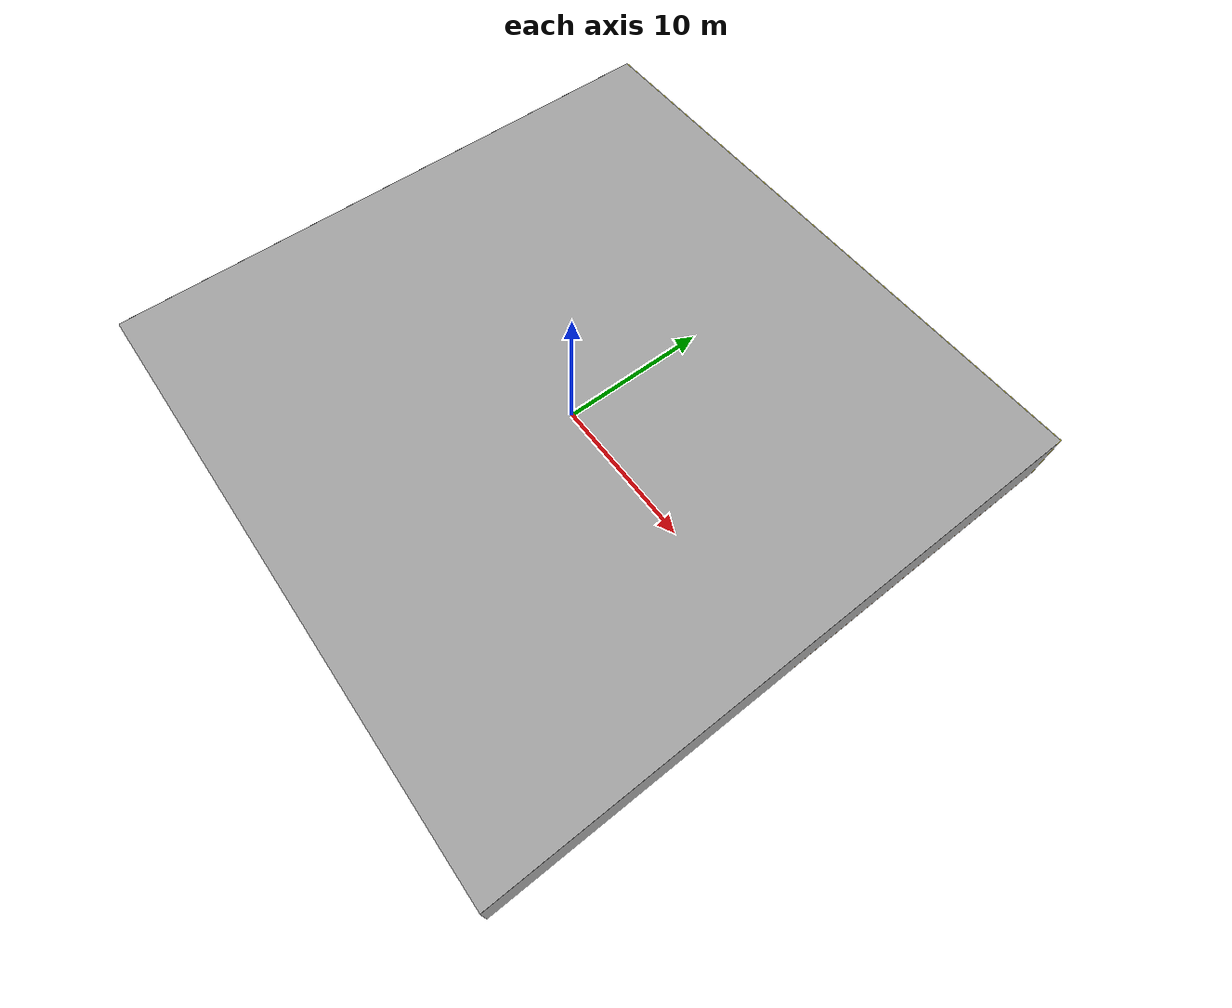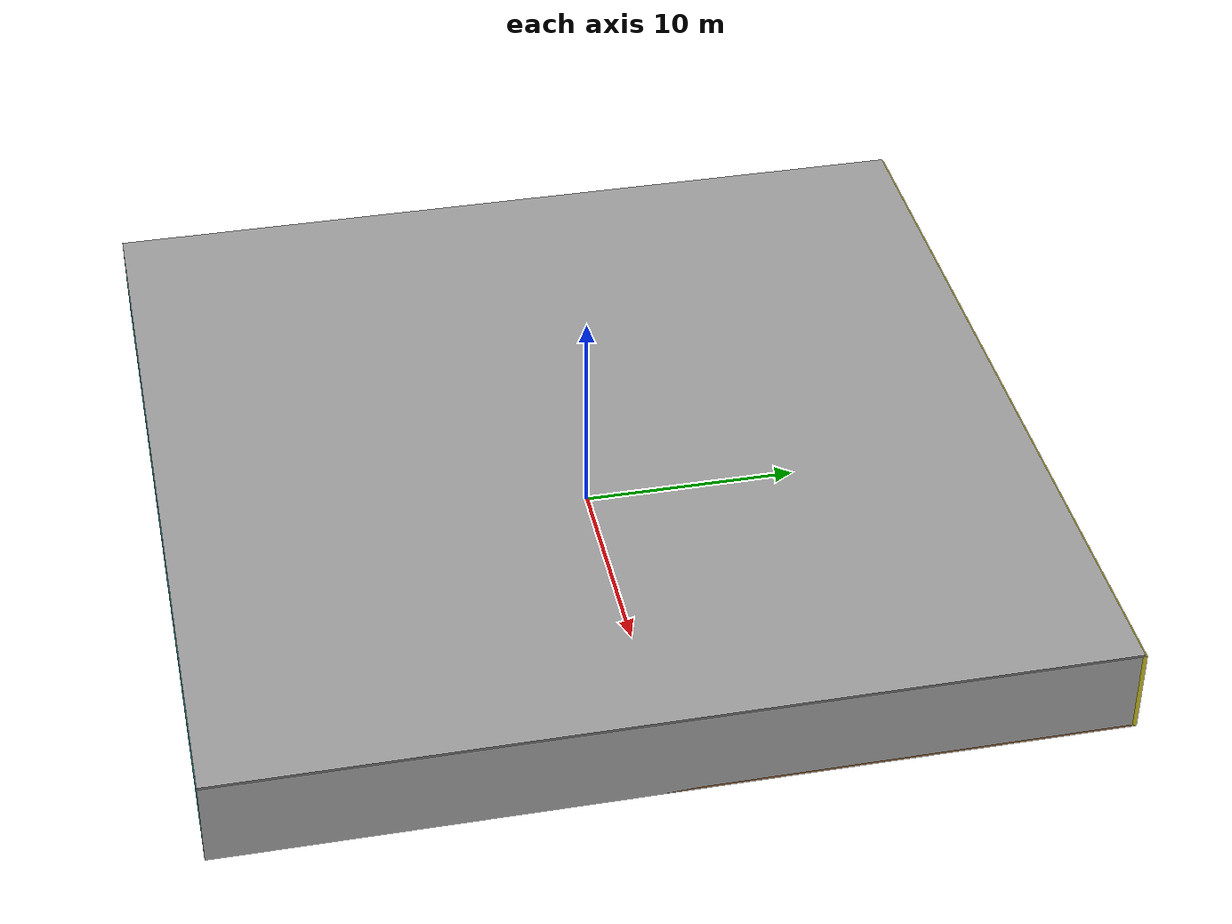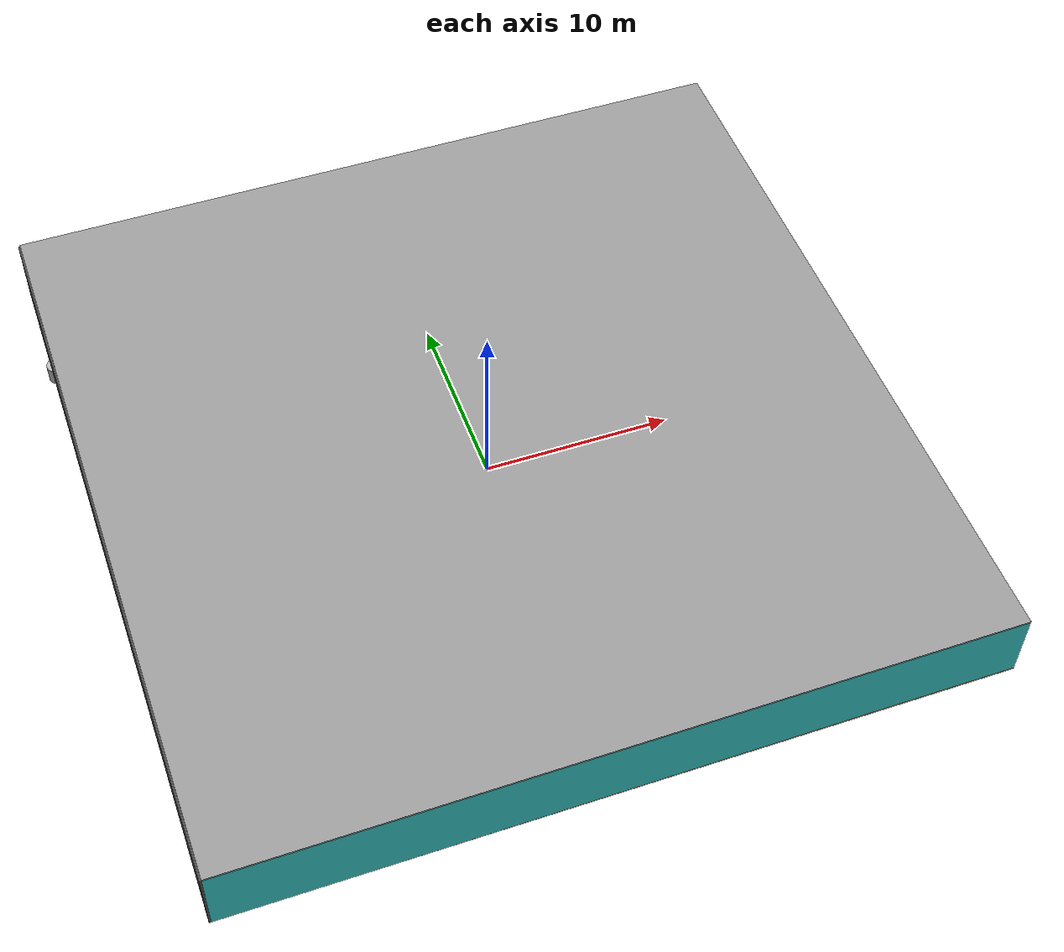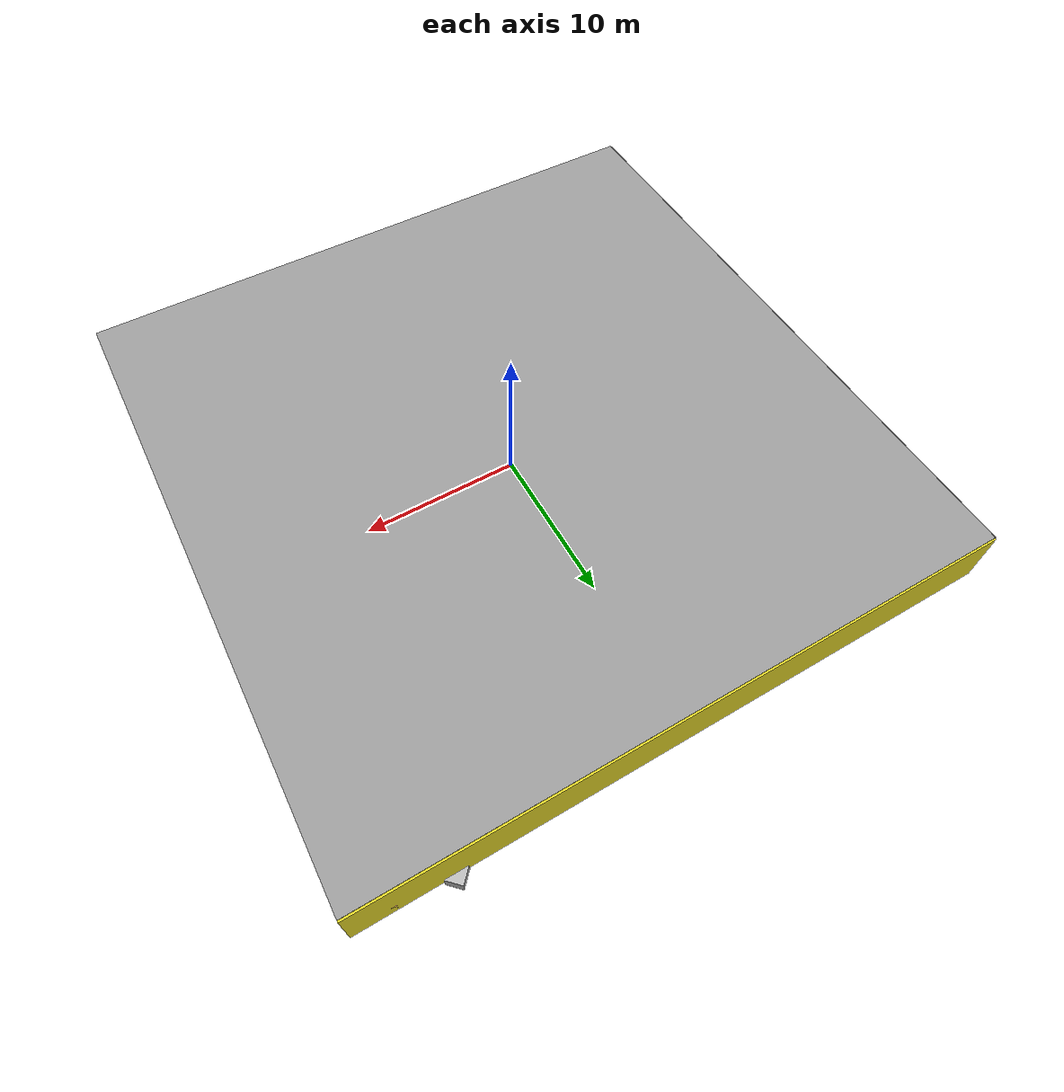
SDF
<sdf version="1.4">
 <world name="default">
  <physics type="ode">
   <max_step_size>0.001</max_step_size>
   <real_time_factor>1</real_time_factor>
   <real_time_update_rate>1000</real_time_update_rate>
   <gravity>0 0 -9.8</gravity>
  </physics>
  <scene><ambient>0.4 0.4 0.4 1</ambient><background>0.7 0.7 0.7 1</background><shadows>1</shadows></scene>
  <model name="Surrounding">
   <static>1</static>
   <link name="Ceiling">
    <collision name="Ceiling_Collision"><geometry><box><size>40 40 0.1</size></box></geometry></collision>
    <visual name="Ceiling_Visual">
     <geometry><box><size>40 40 0.1</size></box></geometry>
     <material>
      <script><uri>file://media/materials/scripts/gazebo.material</uri><name>Gazebo/Grey</name></script>
     </material>
    </visual>
    <pose>0 0 4.05 0 0 0</pose>
   </link>
   <link name="Wall_South">
    <collision name="Wall_South_Collision">
     <geometry><box><size>40 0 4</size></box></geometry>
     <pose>0 0 2 0 -0 0</pose>
    </collision>
    <visual name="Wall_South_Visual">
     <pose>0 0 2 0 -0 0</pose>
     <geometry><box><size>40 0 4</size></box></geometry>
     <material>
      <script><uri>file://media/materials/scripts/gazebo.material</uri><name>Gazebo/Turquoise</name></script>
     </material>
    </visual>
    <velocity_decay><linear>0</linear><angular>0</angular></velocity_decay>
    <pose>0 -20 0 0 -0 0</pose>
   </link>
   <link name="Wall_East">
    <collision name="Wall_21_Collision">
     <geometry><box><size>40 0 4</size></box></geometry>
     <pose>0 0 2 0 -0 0</pose>
    </collision>
    <visual name="Wall_21_Visual">
     <pose>0 0 2 0 -0 0</pose>
     <geometry><box><size>40 0 4</size></box></geometry>
     <material>
      <script><uri>file://media/materials/scripts/gazebo.material</uri><name>Gazebo/CloudySky</name></script>
     </material>
    </visual>
    <velocity_decay><linear>0</linear><angular>0</angular></velocity_decay>
    <pose>20 0 0 0 -0 1.5708</pose>
   </link>
   <link name="Wall_North">
    <collision name="Wall_22_Collision">
     <geometry><box><size>40 0.2 4</size></box></geometry>
     <pose>0 0 2 0 -0 0</pose>
    </collision>
    <visual name="Wall_22_Visual">
     <pose>0 0 2 0 -0 0</pose>
     <geometry><box><size>40 0.2 4</size></box></geometry>
     <material>
      <script><uri>file://media/materials/scripts/gazebo.material</uri><name>Gazebo/YellowGlow</name></script>
     </material>
    </visual>
    <velocity_decay><linear>0</linear><angular>0</angular></velocity_decay>
    <pose>0 20 0 0 -0 0</pose>
   </link>
   <link name="Wall_West">
    <collision name="Wall_23_Collision">
     <geometry><box><size>40 0.2 4</size></box></geometry>
     <pose>0 0 2 0 -0 0</pose>
    </collision>
    <visual name="Wall_23_Visual">
     <pose>0 0 2 0 -0 0</pose>
     <geometry><box><size>40 0.2 4</size></box></geometry>
     <material>
      <script><uri>file://media/materials/scripts/gazebo.material</uri><name>Gazebo/DarkGrey</name></script>
     </material>
    </visual>
    <velocity_decay><linear>0</linear><angular>0</angular></velocity_decay>
    <pose>-20 0 0 0 0 -1.5708</pose>
   </link>
   <link name="Ground_link">
    <collision name="collision">
     <pose>0 0 .05 0 -0 0</pose>
     <geometry><box><size>40 40 0.1</size></box></geometry>
    </collision>
    <visual name="visual">
     <pose>0 0 .05 0 -0 0</pose>
     <geometry><box><size>40 40 0.1</size></box></geometry>
     <material>
      <script><uri>file://media/materials/scripts/gazebo.material</uri><name>Gazebo/WoodFloor</name></script>
     </material>
    </visual>
   </link>
   <static>1</static>
  </model>
  <spherical_coordinates>
   <surface_model>EARTH_WGS84</surface_model>
   <latitude_deg>0</latitude_deg>
   <longitude_deg>0</longitude_deg>
   <elevation>0</elevation>
   <heading_deg>0</heading_deg>
  </spherical_coordinates>
  <light name="lightball_0" type="diffuse">
   <diffuse>0.8 0.8 0.8 1</diffuse>
   <specular>0.2 0.2 0.2 1</specular>
   <attenuation>
    <range>100</range>
    <constant>0.7</constant>
    <linear>0.01</linear>
    <quadratic>0.001</quadratic>
   </attenuation>
   <direction>-0.5 0.1 -0.9</direction>
   <pose>-2.07956091144 4.975582977 1.05396303672 0 0 0</pose>
  </light>
  <light name="lightball_1" type="diffuse">
   <diffuse>0.8 0.8 0.8 1</diffuse>
   <specular>0.2 0.2 0.2 1</specular>
   <attenuation>
    <range>100</range>
    <constant>0.7</constant>
    <linear>0.01</linear>
    <quadratic>0.001</quadratic>
   </attenuation>
   <direction>-0.5 0.1 -0.9</direction>
   <pose>-14.4867839166 -19.0525425243 3.67575148021 0 0 0</pose>
  </light>
  <light name="lightball_2" type="diffuse">
   <diffuse>0.8 0.8 0.8 1</diffuse>
   <specular>0.2 0.2 0.2 1</specular>
   <attenuation>
    <range>100</range>
    <constant>0.7</constant>
    <linear>0.01</linear>
    <quadratic>0.001</quadratic>
   </attenuation>
   <direction>-0.5 0.1 -0.9</direction>
   <pose>2.02870989799 -12.1729128392 2.53600060631 0 0 0</pose>
  </light>
  <light name="lightball_3" type="diffuse">
   <diffuse>0.8 0.8 0.8 1</diffuse>
   <specular>0.2 0.2 0.2 1</specular>
   <attenuation>
    <range>100</range>
    <constant>0.7</constant>
    <linear>0.01</linear>
    <quadratic>0.001</quadratic>
   </attenuation>
   <direction>-0.5 0.1 -0.9</direction>
   <pose>-4.0310227729 2.47132749829 2.3979667245 0 0 0</pose>
  </light>
  <light name="lightball_4" type="diffuse">
   <diffuse>0.8 0.8 0.8 1</diffuse>
   <specular>0.2 0.2 0.2 1</specular>
   <attenuation>
    <range>100</range>
    <constant>0.7</constant>
    <linear>0.01</linear>
    <quadratic>0.001</quadratic>
   </attenuation>
   <direction>-0.5 0.1 -0.9</direction>
   <pose>-9.00909840348 8.14205620594 2.99951083794 0 0 0</pose>
  </light>
  <light name="lightball_5" type="diffuse">
   <diffuse>0.8 0.8 0.8 1</diffuse>
   <specular>0.2 0.2 0.2 1</specular>
   <attenuation>
    <range>100</range>
    <constant>0.7</constant>
    <linear>0.01</linear>
    <quadratic>0.001</quadratic>
   </attenuation>
   <direction>-0.5 0.1 -0.9</direction>
   <pose>-18.9105956406 -17.6821626256 1.68796800262 0 0 0</pose>
  </light>
  <light name="lightball_6" type="diffuse">
   <diffuse>0.8 0.8 0.8 1</diffuse>
   <specular>0.2 0.2 0.2 1</specular>
   <attenuation>
    <range>100</range>
    <constant>0.7</constant>
    <linear>0.01</linear>
    <quadratic>0.001</quadratic>
   </attenuation>
   <direction>-0.5 0.1 -0.9</direction>
   <pose>-10.8703841117 -0.204241114403 0.534644914609 0 0 0</pose>
  </light>
  <light name="lightball_7" type="diffuse">
   <diffuse>0.8 0.8 0.8 1</diffuse>
   <specular>0.2 0.2 0.2 1</specular>
   <attenuation>
    <range>100</range>
    <constant>0.7</constant>
    <linear>0.01</linear>
    <quadratic>0.001</quadratic>
   </attenuation>
   <direction>-0.5 0.1 -0.9</direction>
   <pose>12.090448857 -8.66887239002 1.52405513387 0 0 0</pose>
  </light>
  <light name="lightball_8" type="diffuse">
   <diffuse>0.8 0.8 0.8 1</diffuse>
   <specular>0.2 0.2 0.2 1</specular>
   <attenuation>
    <range>100</range>
    <constant>0.7</constant>
    <linear>0.01</linear>
    <quadratic>0.001</quadratic>
   </attenuation>
   <direction>-0.5 0.1 -0.9</direction>
   <pose>-19.5591981637 -7.6322147017 1.0233563766 0 0 0</pose>
  </light>
  <light name="lightball_9" type="diffuse">
   <diffuse>0.8 0.8 0.8 1</diffuse>
   <specular>0.2 0.2 0.2 1</specular>
   <attenuation>
    <range>100</range>
    <constant>0.7</constant>
    <linear>0.01</linear>
    <quadratic>0.001</quadratic>
   </attenuation>
   <direction>-0.5 0.1 -0.9</direction>
   <pose>15.5267059212 -6.57522290495 3.66560922694 0 0 0</pose>
  </light>
  <include><uri>model://cabinet</uri><pose>-17.6174741649 -10.6673502635 0 0 0 2.6202806522</pose></include>
  <include>
   <uri>model://robocup_3Dsim_goal</uri>
   <pose>-16.7405736595 -5.70581519201 0 0 0 2.17928162147</pose>
  </include>
  <include>
   <uri>model://textured_shapes</uri>
   <pose>-18.3614682761 14.3678074563 0 0 0 1.73339858339</pose>
  </include>
  <include>
   <uri>model://textured_shapes</uri>
   <pose>-14.7364186008 3.53356796022 0 0 0 3.08823620539</pose>
  </include>
  <include>
   <uri>model://textured_shapes</uri>
   <pose>-11.5695118559 6.97660791203 0 0 0 0.146341301348</pose>
  </include>
  <include>
   <uri>model://textured_shapes</uri>
   <pose>-9.24292896082 -9.39172302214 0 0 0 0.586882247522</pose>
  </include>
  <include>
   <uri>model://construction_cone</uri>
   <pose>-7.51051138744 0.270556466927 0 0 0 2.11939527704</pose>
  </include>
  <include>
   <uri>model://robocup_3Dsim_goal</uri>
   <pose>-4.30893777558 -8.90446821452 0 0 0 0.288506954019</pose>
  </include>
  <include><uri>model://table</uri><pose>-6.65622493126 17.5500143527 0 0 0 0.778988828874</pose></include>
  <include>
   <uri>model://textured_shapes</uri>
   <pose>-1.91752732313 -2.92005010938 0 0 0 2.99870737609</pose>
  </include>
  <include>
   <uri>model://robocup_3Dsim_goal</uri>
   <pose>-2.9998386169 0.696895592975 0 0 0 0.393138673364</pose>
  </include>
  <include><uri>model://cabinet</uri><pose>-2.57623631911 3.81756653608 0 0 0 1.91521406002</pose></include>
  <include>
   <uri>model://construction_cone</uri>
   <pose>-2.04875279655 7.36043977104 0 0 0 1.06906105628</pose>
  </include>
  <include>
   <uri>model://robocup_3Dsim_goal</uri>
   <pose>-2.4795752587 18.0227415602 0 0 0 2.0131202513</pose>
  </include>
  <include>
   <uri>model://robocup_3Dsim_goal</uri>
   <pose>0.0497522802403 18.9259505699 0 0 0 0.142654937861</pose>
  </include>
  <include><uri>model://cabinet</uri><pose>3.85526034214 -9.55611911066 0 0 0 0.246371637768</pose></include>
  <include>
   <uri>model://construction_cone</uri>
   <pose>4.63450110467 3.70876742734 0 0 0 0.532757886803</pose>
  </include>
  <include><uri>model://cabinet</uri><pose>7.18928360087 -11.9772139649 0 0 0 1.46228783188</pose></include>
  <include>
   <uri>model://robocup_3Dsim_goal</uri>
   <pose>5.98622139971 -8.86557824974 0 0 0 0.647962562687</pose>
  </include>
  <include><uri>model://cabinet</uri><pose>5.99556001936 -2.51936953417 0 0 0 0.927718643125</pose></include>
  <include>
   <uri>model://robocup_3Dsim_goal</uri>
   <pose>7.03392904941 4.68632681128 0 0 0 0.111385635564</pose>
  </include>
  <include><uri>model://table</uri><pose>8.77892602672 -12.5636309442 0 0 0 0.679815302371</pose></include>
  <include>
   <uri>model://construction_cone</uri>
   <pose>12.4362174862 -2.34705996437 0 0 0 0.85365817036</pose>
  </include>
  <include>
   <uri>model://construction_cone</uri>
   <pose>12.5449682347 13.533776557 0 0 0 1.65766537675</pose>
  </include>
  <include>
   <uri>model://textured_shapes</uri>
   <pose>13.2289654154 19.0051275039 0 0 0 2.37949575386</pose>
  </include>
  <include><uri>model://cabinet</uri><pose>18.4827463124 -4.90390882496 0 0 0 1.58733993917</pose></include>
  <include><uri>model://table</uri><pose>17.6900331734 19.3423305064 0 0 0 1.38274689811</pose></include>
 </world>
</sdf>

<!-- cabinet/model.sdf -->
<sdf version="1.5">
  <model name="cabinet">
    <static>true</static>
    <link name="cabinet_bottom_plate">
      <inertial>
        <pose>0 0 -1 0 0 0</pose>
        <inertia>
          <ixx>2.050000</ixx>
          <ixy>0</ixy>
          <ixz>0</ixz>
          <iyy>2.050000</iyy>
          <iyz>0</iyz>
          <izz>2.050000</izz>
        </inertia>
        <mass>25.000000</mass>
      </inertial>
      <collision name="cabinet_bottom_plate_geom">
        <pose>0 0 0.010000 0 0 0</pose>
        <geometry>
          <box>
            <size>0.450000 0.450000 0.020000</size>
          </box>
        </geometry>
      </collision>
      <visual name="cabinet_bottom_plate_geom_visual">
        <pose>0 0 0.010000 0 0 0</pose>
        <geometry>
          <box>
            <size>0.450000 0.450000 0.020000</size>
          </box>
        </geometry>
        <material>
          <script>
            <uri>model://media/materials/scripts/gazebo.material</uri>
            <name>Gazebo/Wood</name>
          </script>
        </material>
      </visual>
      <collision name="cabinet_bottom_plate_geom_cabinet_back_plate">
        <pose>0.235000 0 0.510000 0 0 0</pose>
        <geometry>
          <box>
            <size>0.020000 0.450000 1.020000</size>
          </box>
        </geometry>
      </collision>
      <visual name="cabinet_bottom_plate_geom_cabinet_back_plate_visual">
        <pose>0.235000 0 0.510000 0 0 0</pose>
        <geometry>
          <box>
            <size>0.020000 0.450000 1.020000</size>
          </box>
        </geometry>
        <material>
          <script>
            <uri>model://media/materials/scripts/gazebo.material</uri>
            <name>Gazebo/Wood</name>
          </script>
        </material>
      </visual>
      <collision name="cabinet_bottom_plate_geom_cabinet_left_plate">
        <pose>0 0.235000 0.510000 0 0 0</pose>
        <geometry>
          <box>
            <size>0.450000 0.020000 1.020000</size>
          </box>
        </geometry>
      </collision>
      <visual name="cabinet_bottom_plate_geom_cabinet_left_plate_visual">
        <pose>0 0.235000 0.510000 0 0 0</pose>
        <geometry>
          <box>
            <size>0.450000 0.020000 1.020000</size>
          </box>
        </geometry>
        <material>
          <script>
            <uri>model://media/materials/scripts/gazebo.material</uri>
            <name>Gazebo/Wood</name>
          </script>
        </material>
      </visual>
      <collision name="cabinet_bottom_plate_geom_cabinet_middle_plate">
        <pose>0 0 0.510000 0 0 0</pose>
        <geometry>
          <box>
            <size>0.450000 0.450000 0.020000</size>
          </box>
        </geometry>
      </collision>
      <visual name="cabinet_bottom_plate_geom_cabinet_middle_plate_visual">
        <pose>0 0 0.510000 0 0 0</pose>
        <geometry>
          <box>
            <size>0.450000 0.450000 0.020000</size>
          </box>
        </geometry>
        <material>
          <script>
            <uri>model://media/materials/scripts/gazebo.material</uri>
            <name>Gazebo/Wood</name>
          </script>
        </material>
      </visual>
      <collision name="cabinet_bottom_plate_geom_cabinet_right_plate">
        <pose>0 -0.235000 0.510000 0 0 0</pose>
        <geometry>
          <box>
            <size>0.450000 0.020000 1.020000</size>
          </box>
        </geometry>
      </collision>
      <visual name="cabinet_bottom_plate_geom_cabinet_right_plate_visual">
        <pose>0 -0.235000 0.510000 0 0 0</pose>
        <geometry>
          <box>
            <size>0.450000 0.020000 1.020000</size>
          </box>
        </geometry>
        <material>
          <script>
            <uri>model://media/materials/scripts/gazebo.material</uri>
            <name>Gazebo/Wood</name>
          </script>
        </material>
      </visual>
      <collision name="cabinet_bottom_plate_geom_cabinet_top_plate">
        <pose>0 0 1.010000 0 0 0</pose>
        <geometry>
          <box>
            <size>0.450000 0.450000 0.020000</size>
          </box>
        </geometry>
      </collision>
      <visual name="cabinet_bottom_plate_geom_cabinet_top_plate_visual">
        <pose>0 0 1.010000 0 0 0</pose>
        <geometry>
          <box>
            <size>0.450000 0.450000 0.020000</size>
          </box>
        </geometry>
        <material>
          <script>
            <uri>model://media/materials/scripts/gazebo.material</uri>
            <name>Gazebo/Wood</name>
          </script>
        </material>
      </visual>
    </link>
  </model>
</sdf>

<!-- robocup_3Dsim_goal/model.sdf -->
<sdf version="1.5">
  <model name="robocup_3d_goal">
    <static>true</static>
    <link name="left_post">
      <pose>0 1.05 0.45 0 0 0</pose>
      <collision name="collision">
        <geometry>
          <cylinder>
            <radius>0.05</radius>
            <length>0.9</length>
          </cylinder>
        </geometry>
      </collision>
      <visual name="visual">
        <geometry>
          <cylinder>
            <radius>0.05</radius>
            <length>0.9</length>
          </cylinder>
        </geometry>
        <material>
          <script>
            <uri>file://media/materials/scripts/gazebo.material</uri>
            <name>Gazebo/ZincYellow</name>
          </script>
        </material>
      </visual>
    </link>
    <link name="left_support_horiz_lower">
      <pose>0.30 1.05 0.01 0 0 0</pose>
      <collision name="collision">
        <geometry>
          <box>
            <size>0.50 0.02 0.02</size>
          </box>
        </geometry>
      </collision>
      <visual name="visual">
        <geometry>
          <box>
            <size>0.50 0.02 0.02</size>
          </box>
        </geometry>
        <material>
          <script>
            <uri>file://media/materials/scripts/gazebo.material</uri>
            <name>Gazebo/White</name>
          </script>
        </material>
      </visual>
    </link>
    <link name="left_support_horiz_upper">
      <pose>0.30 1.05 0.79 0 0 0</pose>
      <collision name="collision">
        <geometry>
          <box>
            <size>0.50 0.02 0.02</size>
          </box>
        </geometry>
      </collision>
      <visual name="visual">
        <geometry>
          <box>
            <size>0.50 0.02 0.02</size>
          </box>
        </geometry>
        <material>
          <script>
            <uri>file://media/materials/scripts/gazebo.material</uri>
            <name>Gazebo/White</name>
          </script>
        </material>
      </visual>
    </link>
    <link name="left_support_vertical">
      <pose>0.56 1.05 0.4 0 1.5708 0</pose>
      <collision name="collision">
        <geometry>
          <box>
            <size>0.80 0.02 0.02</size>
          </box>
        </geometry>
      </collision>
      <visual name="visual">
        <geometry>
          <box>
            <size>0.80 0.02 0.02</size>
          </box>
        </geometry>
        <material>
          <script>
            <uri>file://media/materials/scripts/gazebo.material</uri>
            <name>Gazebo/White</name>
          </script>
        </material>
      </visual>
    </link>
    <link name="right_support_horiz_lower">
      <pose>0.30 -1.05 0.01 0 0 0</pose>
      <collision name="collision">
        <geometry>
          <box>
            <size>0.50 0.02 0.02</size>
          </box>
        </geometry>
      </collision>
      <visual name="visual">
        <geometry>
          <box>
            <size>0.50 0.02 0.02</size>
          </box>
        </geometry>
        <material>
          <script>
            <uri>file://media/materials/scripts/gazebo.material</uri>
            <name>Gazebo/White</name>
          </script>
        </material>
      </visual>
    </link>
    <link name="right_support_horiz_upper">
      <pose>0.30 -1.05 0.79 0 0 0</pose>
      <collision name="collision">
        <geometry>
          <box>
            <size>0.50 0.02 0.02</size>
          </box>
        </geometry>
      </collision>
      <visual name="visual">
        <geometry>
          <box>
            <size>0.50 0.02 0.02</size>
          </box>
        </geometry>
        <material>
          <script>
            <uri>file://media/materials/scripts/gazebo.material</uri>
            <name>Gazebo/White</name>
          </script>
        </material>
      </visual>
    </link>
    <link name="right_support_vertical">
      <pose>0.56 -1.05 0.4 0 1.5708 0</pose>
      <collision name="collision">
        <geometry>
          <box>
            <size>0.80 0.02 0.02</size>
          </box>
        </geometry>
      </collision>
      <visual name="visual">
        <geometry>
          <box>
            <size>0.80 0.02 0.02</size>
          </box>
        </geometry>
        <material>
          <script>
            <uri>file://media/materials/scripts/gazebo.material</uri>
            <name>Gazebo/White</name>
          </script>
        </material>
      </visual>
    </link>
    <link name="center_support_horiz_lower">
      <pose>0.56 0 0.01 0 1.5708 0</pose>
      <collision name="collision">
        <geometry>
          <box>
            <size>0.02 2.08 0.02</size>
          </box>
        </geometry>
      </collision>
      <visual name="visual">
        <geometry>
          <box>
            <size>0.02 2.08 0.02</size>
          </box>
        </geometry>
        <material>
          <script>
            <uri>file://media/materials/scripts/gazebo.material</uri>
            <name>Gazebo/White</name>
          </script>
        </material>
      </visual>
    </link>
    <link name="center_support_horiz_upper">
      <pose>0.56 0 0.79 0 1.5708 0</pose>
      <collision name="collision">
        <geometry>
          <box>
            <size>0.02 2.08 0.02</size>
          </box>
        </geometry>
      </collision>
      <visual name="visual">
        <geometry>
          <box>
            <size>0.02 2.08 0.02</size>
          </box>
        </geometry>
        <material>
          <script>
            <uri>file://media/materials/scripts/gazebo.material</uri>
            <name>Gazebo/White</name>
          </script>
        </material>
      </visual>
    </link>
    <link name="right_post">
      <pose>0 -1.05 0.45 0 0 0</pose>
      <collision name="collision">
        <geometry>
          <cylinder>
            <radius>0.05</radius>
            <length>0.9</length>
          </cylinder>
        </geometry>
      </collision>
      <visual name="visual">
        <geometry>
          <cylinder>
            <radius>0.05</radius>
            <length>0.9</length>
          </cylinder>
        </geometry>
        <material>
          <script>
            <uri>file://media/materials/scripts/gazebo.material</uri>
            <name>Gazebo/ZincYellow</name>
          </script>
        </material>
      </visual>
    </link>
    <link name="crossbar">
      <pose>0 0 0.85 1.57 1.57 0</pose>
      <collision name="collision">
        <geometry>
          <cylinder>
            <radius>0.05</radius>
            <length>2.0</length>
          </cylinder>
        </geometry>
      </collision>
      <visual name="visual">
        <geometry>
          <cylinder>
            <radius>0.05</radius>
            <length>2.0</length>
          </cylinder>
        </geometry>
        <material>
          <script>
            <uri>file://media/materials/scripts/gazebo.material</uri>
            <name>Gazebo/ZincYellow</name>
          </script>
        </material>
      </visual>
    </link>
    <link name="center_net">
      <pose>0.56 0 0.40 0 0 0</pose>
      <collision name="collision">
        <geometry>
          <box>
            <size>0.01 2.1 0.80</size>
          </box>
        </geometry>
      </collision>
      <visual name="visual">
        <geometry>
          <box>
            <size>0.01 2.1 0.80</size>
          </box>
        </geometry>
        <material>
          <script>
            <uri>model://../model_source/models/robocup09_spl_field/materials/scripts/</uri>
            <uri>model://../model_source/models/robocup09_spl_field/materials/textures/</uri>
            <name>RoboCup/Net</name>
          </script>
        </material>
      </visual>
    </link>
    <link name="left_net">
      <pose>0.30 1.05 0.40 0 0 0</pose>
      <collision name="collision">
        <geometry>
          <box>
            <size>0.50 0.01 0.76</size>
          </box>
        </geometry>
      </collision>
      <visual name="visual">
        <geometry>
          <box>
            <size>0.50 0.01 0.76</size>
          </box>
        </geometry>
        <material>
          <script>
            <uri>model://../model_source/models/robocup09_spl_field/materials/scripts/</uri>
            <uri>model://../model_source/models/robocup09_spl_field/materials/textures/</uri>
            <name>RoboCup/Net</name>
          </script>
        </material>
      </visual>
    </link>
    <link name="right_net">
      <pose>0.30 -1.05 0.40 0 0 0</pose>
      <collision name="collision">
        <geometry>
          <box>
            <size>0.50 0.01 0.76</size>
          </box>
        </geometry>
      </collision>
      <visual name="visual">
        <geometry>
          <box>
            <size>0.50 0.01 0.76</size>
          </box>
        </geometry>
        <material>
          <script>
            <uri>model://../model_source/models/robocup09_spl_field/materials/scripts/</uri>
            <uri>model://../model_source/models/robocup09_spl_field/materials/textures/</uri>
            <name>RoboCup/Net</name>
          </script>
        </material>
      </visual>
    </link>
  </model>
</sdf>

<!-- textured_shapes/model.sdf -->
<sdf version="1.6">
  <model name="textured_shapes">
    <pose>0 0 0.5 0 0 0</pose>
    <link name="box">
      <pose>0 -1.5 0 0 0 0</pose>
      <collision name="collision">
        <geometry>
          <box>
            <size>1 1 1</size>
          </box>
        </geometry>
      </collision>
      <visual name="visual">
        <geometry>
          <box>
            <size>1 1 1</size>
          </box>
        </geometry>
        <material>
          <script>
            <uri>model://../model_source/models/textured_shapes/materials/scripts</uri>
            <uri>model://../model_source/models/textured_shapes/materials/textures</uri>
            <name>TexturedShape/Squares</name>
          </script>
        </material>
      </visual>
    </link>
    <link name="sphere">
      <collision name="collision">
        <geometry>
          <sphere>
            <radius>0.5</radius>
          </sphere>
        </geometry>
      </collision>
      <visual name="visual">
        <geometry>
          <sphere>
            <radius>0.5</radius>
          </sphere>
        </geometry>
        <material>
          <script>
            <uri>model://../model_source/models/textured_shapes/materials/scripts</uri>
            <uri>model://../model_source/models/textured_shapes/materials/textures</uri>
            <name>TexturedShape/Squares</name>
          </script>
        </material>
      </visual>
    </link>
    <link name="cylinder">
      <pose>0 1.5 0 0 0 0</pose>
      <collision name="collision">
        <geometry>
          <cylinder>
            <radius>0.5</radius>
            <length>1</length>
          </cylinder>
        </geometry>
      </collision>
      <visual name="visual">
        <geometry>
          <cylinder>
            <radius>0.5</radius>
            <length>1</length>
          </cylinder>
        </geometry>
        <material>
          <script>
            <uri>model://../model_source/models/textured_shapes/materials/scripts</uri>
            <uri>model://../model_source/models/textured_shapes/materials/textures</uri>
            <name>TexturedShape/Squares</name>
          </script>
        </material>
      </visual>
    </link>
  </model>
</sdf>

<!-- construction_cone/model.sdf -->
<sdf version="1.5">
  <model name="Construction Cone">
    <link name="link">
      <collision name="collision">
        <geometry>
          <mesh>
            <scale>10 10 10</scale>
            <uri>file://isr-testbed/construction_cone/meshes/construction_cone.dae</uri>
          </mesh>
        </geometry>
      </collision>
      <visual name="visual">
        <geometry>
          <mesh>
            <scale>10 10 10</scale>
            <uri>file://isr-testbed/construction_cone/meshes/construction_cone.dae</uri>
          </mesh>
        </geometry>
      </visual>
    </link>
  </model>
</sdf>

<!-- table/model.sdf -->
<sdf version="1.5">
  <model name="table">
    <static>true</static>
    <link name="link">
      <collision name="surface">
        <pose>0 0 1.0 0 0 0</pose>
        <geometry>
          <box>
            <size>1.5 0.8 0.03</size>
          </box>
        </geometry>
        <surface>
          <friction>
            <ode>
              <mu>0.6</mu>
              <mu2>0.6</mu2>
            </ode>
          </friction>
        </surface>
      </collision>
      <visual name="visual1">
        <pose>0 0 1.0 0 0 0</pose>
        <geometry>
          <box>
            <size>1.5 0.8 0.03</size>
          </box>
        </geometry>
        <material>
          <script>
            <uri>model://media/materials/scripts/gazebo.material</uri>
            <name>Gazebo/Wood</name>
          </script>
        </material>
      </visual>
      <collision name="front_left_leg">
        <pose>0.68 0.38 0.5 0 0 0</pose>
        <geometry>
          <cylinder>
            <radius>0.02</radius>
            <length>1.0</length>
          </cylinder>
        </geometry>
      </collision>
      <visual name="front_left_leg">
        <pose>0.68 0.38 0.5 0 0 0</pose>
        <geometry>
          <cylinder>
            <radius>0.02</radius>
            <length>1.0</length>
          </cylinder>
        </geometry>
        <material>
          <script>
            <uri>model://media/materials/scripts/gazebo.material</uri>
            <name>Gazebo/Grey</name>
          </script>
        </material>
      </visual>
      <collision name="front_right_leg">
        <pose>0.68 -0.38 0.5 0 0 0</pose>
        <geometry>
          <cylinder>
            <radius>0.02</radius>
            <length>1.0</length>
          </cylinder>
        </geometry>
      </collision>
      <visual name="front_right_leg">
        <pose>0.68 -0.38 0.5 0 0 0</pose>
        <geometry>
          <cylinder>
            <radius>0.02</radius>
            <length>1.0</length>
          </cylinder>
        </geometry>
        <material>
          <script>
            <uri>model://media/materials/scripts/gazebo.material</uri>
            <name>Gazebo/Grey</name>
          </script>
        </material>
      </visual>
      <collision name="back_right_leg">
        <pose>-0.68 -0.38 0.5 0 0 0</pose>
        <geometry>
          <cylinder>
            <radius>0.02</radius>
            <length>1.0</length>
          </cylinder>
        </geometry>
      </collision>
      <visual name="back_right_leg">
        <pose>-0.68 -0.38 0.5 0 0 0</pose>
        <geometry>
          <cylinder>
            <radius>0.02</radius>
            <length>1.0</length>
          </cylinder>
        </geometry>
        <material>
          <script>
            <uri>model://media/materials/scripts/gazebo.material</uri>
            <name>Gazebo/Grey</name>
          </script>
        </material>
      </visual>
      <collision name="back_left_leg">
        <pose>-0.68 0.38 0.5 0 0 0</pose>
        <geometry>
          <cylinder>
            <radius>0.02</radius>
            <length>1.0</length>
          </cylinder>
        </geometry>
      </collision>
      <visual name="back_left_leg">
        <pose>-0.68 0.38 0.5 0 0 0</pose>
        <geometry>
          <cylinder>
            <radius>0.02</radius>
            <length>1.0</length>
          </cylinder>
        </geometry>
        <material>
          <script>
            <uri>model://media/materials/scripts/gazebo.material</uri>
            <name>Gazebo/Grey</name>
          </script>
        </material>
      </visual>
    </link>
  </model>
</sdf>
